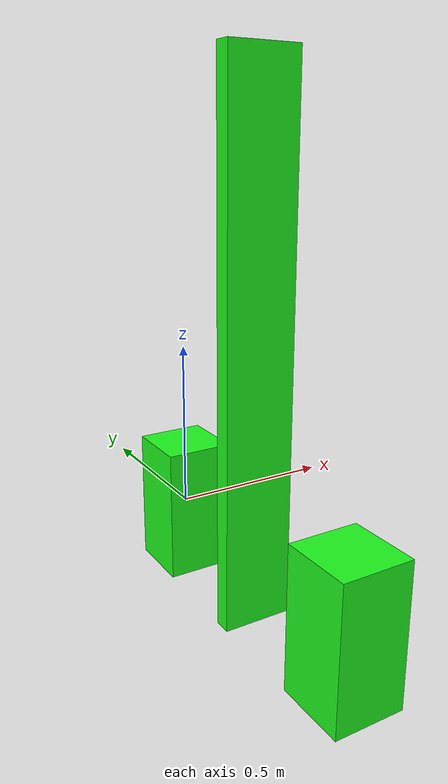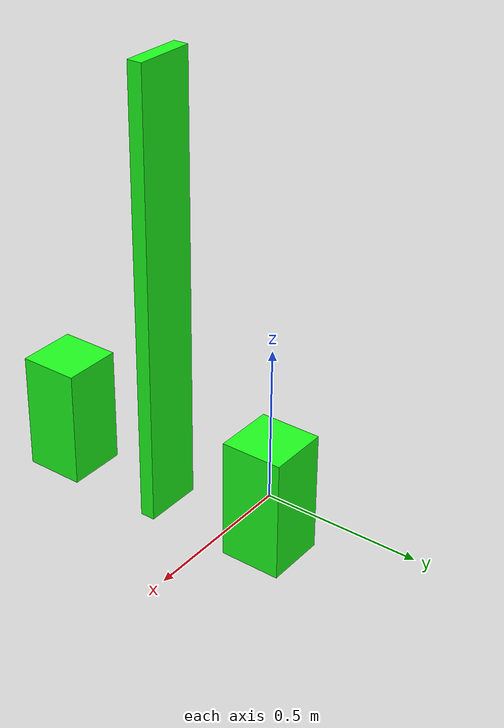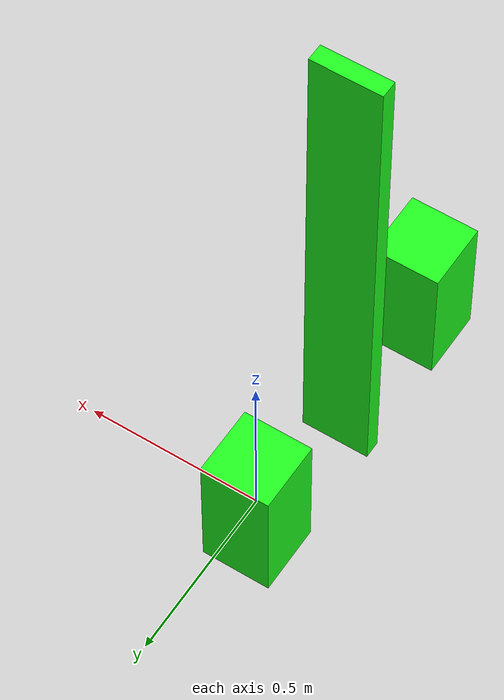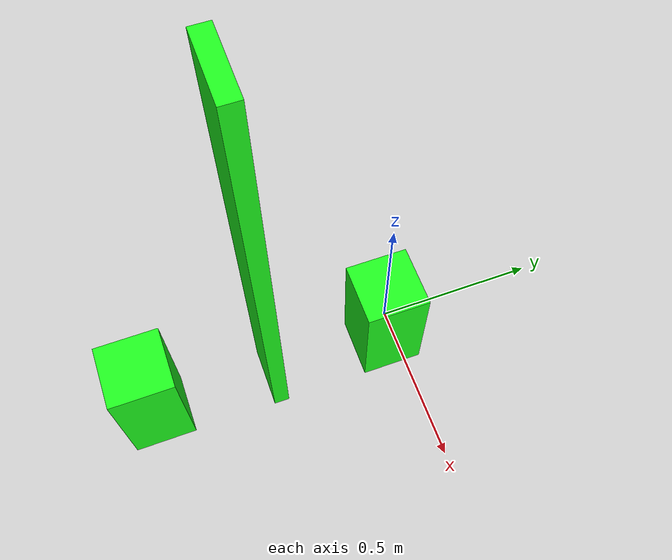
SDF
<sdf version='1.11'>
  <model name='composite_obstacle'>
    <link name='table_1_link'>
      <inertial>
        <pose>0 -0.40000000000000002 0.27500000000000002 0 0 0</pose>
        <mass>40</mass>
        <inertia>
          <ixx>10.31251</ixx>
          <ixy>0</ixy>
          <ixz>0</ixz>
          <iyy>7.1750100000000003</iyy>
          <iyz>0</iyz>
          <izz>3.404170000000001</izz>
        </inertia>
      </inertial>
      <collision name='table_1_link_fixed_joint_lump__table_1_collision_collision'>
        <pose>0 0 0 0 0 0</pose>
        <geometry>
          <box>
            <size>0.20000000000000001 0.20000000000000001 0.40000000000000002</size>
          </box>
        </geometry>
        <surface>
          <friction>
            <ode>
              <mu>0.01</mu>
              <mu2>0.01</mu2>
            </ode>
          </friction>
        </surface>
      </collision>
      <collision name='table_1_link_fixed_joint_lump__table_2_collision_collision_1'>
        <pose>0 -0.80000000000000004 0 0 0 0</pose>
        <geometry>
          <box>
            <size>0.20000000000000001 0.20000000000000001 0.40000000000000002</size>
          </box>
        </geometry>
        <surface>
          <friction>
            <ode>
              <mu>0.01</mu>
              <mu2>0.01</mu2>
            </ode>
          </friction>
        </surface>
      </collision>
      <collision name='table_1_link_fixed_joint_lump__wall_collision_collision_2'>
        <pose>0 -0.40000000000000002 0.55000000000000004 0 0 0</pose>
        <geometry>
          <box>
            <size>0.20000000000000001 0.050000000000000003 1.5</size>
          </box>
        </geometry>
      </collision>
      <visual name='table_1_link_fixed_joint_lump__table_1_visual'>
        <pose>0 0 0 0 0 0</pose>
        <geometry>
          <box>
            <size>0.20000000000000001 0.20000000000000001 0.40000000000000002</size>
          </box>
        </geometry>
        <material>
          <diffuse>0.122549996 1 0.122549996 0.9</diffuse>
          <ambient>0.122549996 1 0.122549996 0.9</ambient>
        </material>
      </visual>
      <visual name='table_1_link_fixed_joint_lump__table_2_visual_1'>
        <pose>0 -0.80000000000000004 0 0 0 0</pose>
        <geometry>
          <box>
            <size>0.20000000000000001 0.20000000000000001 0.40000000000000002</size>
          </box>
        </geometry>
        <material>
          <diffuse>0.122549996 1 0.122549996 0.9</diffuse>
          <ambient>0.122549996 1 0.122549996 0.9</ambient>
        </material>
      </visual>
      <visual name='table_1_link_fixed_joint_lump__wall_visual_2'>
        <pose>0 -0.40000000000000002 0.55000000000000004 0 0 0</pose>
        <geometry>
          <box>
            <size>0.20000000000000001 0.050000000000000003 1.5</size>
          </box>
        </geometry>
        <material>
          <diffuse>0.122549996 1 0.122549996 0.9</diffuse>
          <ambient>0.122549996 1 0.122549996 0.9</ambient>
        </material>
      </visual>
    </link>
    <frame name='t2_joint' attached_to='table_1_link'>
      <pose>0 -0.80000000000000004 0 0 0 0</pose>
    </frame>
    <frame name='table_2_link' attached_to='t2_joint'>
      <pose>0 0 0 0 0 0</pose>
    </frame>
    <frame name='wall_joint' attached_to='table_1_link'>
      <pose>0 -0.40000000000000002 0.55000000000000004 0 0 0</pose>
    </frame>
    <frame name='wall_link' attached_to='wall_joint'>
      <pose>0 0 0 0 0 0</pose>
    </frame>
  </model>
</sdf>
